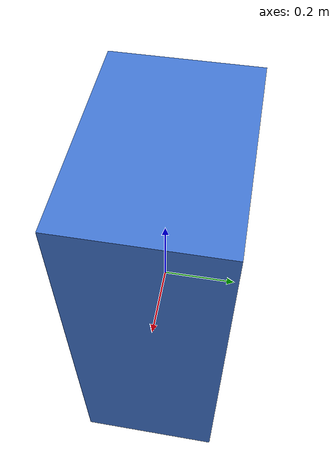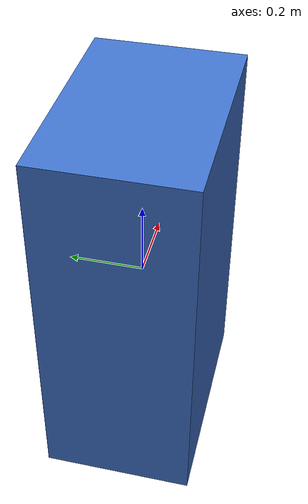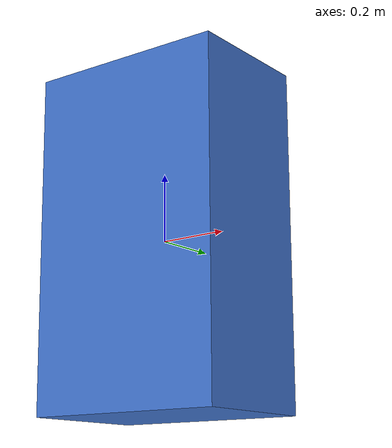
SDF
<?xml version="1.0"?>
<sdf version="1.6">
  <model name="obstacle_box">
    <!-- Static: can be repositioned via SetEntityState but not pushed by physics -->
    <static>true</static>
    <link name="link">
      <collision name="collision">
        <geometry><box><size>0.60 0.40 1.00</size></box></geometry>
        <surface>
          <friction><ode><mu>0.8</mu><mu2>0.8</mu2></ode></friction>
          <contact><ode/></contact>
        </surface>
      </collision>
      <visual name="visual">
        <geometry><box><size>0.60 0.40 1.00</size></box></geometry>
        <material>
          <ambient>0.25 0.45 0.80 1</ambient>
          <diffuse>0.25 0.45 0.80 1</diffuse>
          <specular>0.1 0.1 0.1 1</specular>
        </material>
      </visual>
    </link>
  </model>
</sdf>
